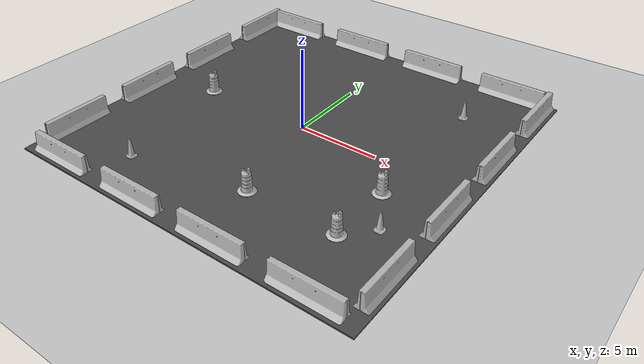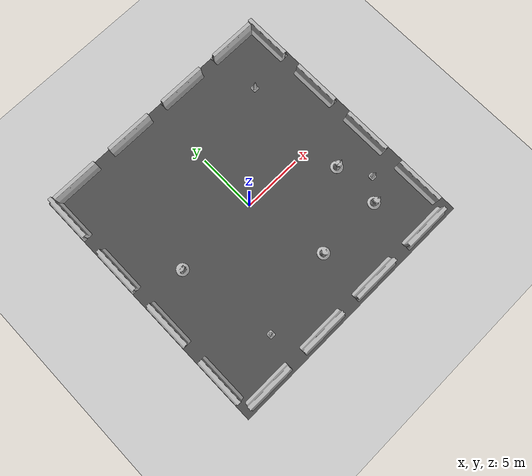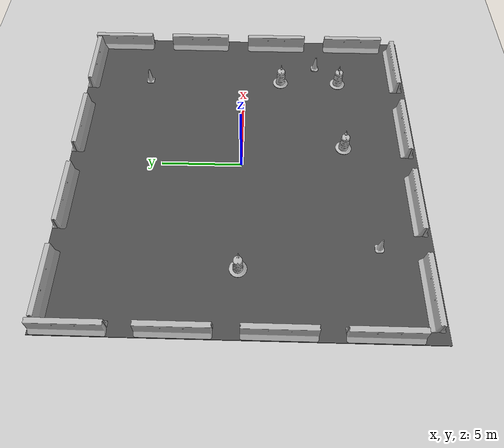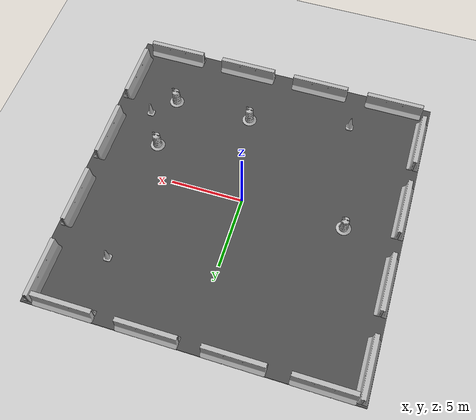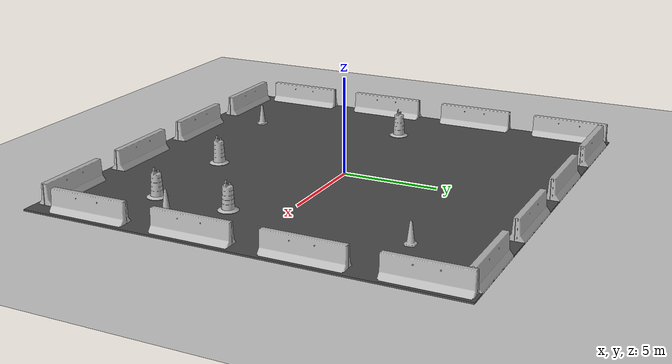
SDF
<sdf version="1.4">
 <world name="default">
  <light name="sun" type="directional">
   <pose>0 0 10 0 -0 0</pose>
   <diffuse>0.8 0.8 0.8 1</diffuse>
   <specular>0.2 0.2 0.2 1</specular>
   <attenuation>
    <range>1000</range>
    <constant>0.9</constant>
    <linear>0.01</linear>
    <quadratic>0.001</quadratic>
   </attenuation>
   <direction>-0.5 0.1 -0.9</direction>
  </light>
  <model name="ground_plane">
   <static>1</static>
   <link name="link">
    <collision name="collision">
     <geometry><plane><normal>0 0 1</normal><size>100 100</size></plane></geometry>
     <surface><friction><ode><mu>100</mu><mu2>50</mu2></ode></friction></surface>
    </collision>
    <visual name="visual">
     <cast_shadows>0</cast_shadows>
     <geometry><plane><normal>0 0 1</normal><size>100 100</size></plane></geometry>
     <material>
      <script><uri>file://media/materials/scripts/gazebo.material</uri><name>Gazebo/Grey</name></script>
     </material>
    </visual>
    <velocity_decay><linear>0</linear><angular>0</angular></velocity_decay>
    <kinematic>1</kinematic>
   </link>
  </model>
  <physics type="ode">
   <max_step_size>0.01</max_step_size>
   <real_time_factor>1</real_time_factor>
   <real_time_update_rate>100</real_time_update_rate>
   <gravity>0 0 -9.8</gravity>
  </physics>
  <scene><ambient>0.4 0.4 0.4 1</ambient><background>0.7 0.7 0.7 1</background><shadows>1</shadows></scene>
  <model name="jersey_barrier">
   <static>1</static>
   <link name="link">
    <visual name="visual">
     <geometry><mesh><uri>model://jersey_barrier/meshes/jersey_barrier.dae</uri></mesh></geometry>
    </visual>
    <collision name="upright">
     <pose>0 0 0.5715 0 -0 0</pose>
     <geometry><box><size>4.06542 0.3063 1.143</size></box></geometry>
    </collision>
    <collision name="base">
     <pose>0 0 0.032258 0 -0 0</pose>
     <geometry><box><size>4.06542 0.8107 0.064516</size></box></geometry>
    </collision>
    <collision name="base2">
     <pose>0 0 0.1 0 -0 0</pose>
     <geometry><box><size>4.06542 0.65 0.1</size></box></geometry>
    </collision>
    <collision name="base3">
     <pose>0 0 0.2 0 -0 0</pose>
     <geometry><box><size>4.06542 0.5 0.1</size></box></geometry>
    </collision>
    <collision name="left-angle">
     <pose>0 -0.224 0.2401 0.9 -0 0</pose>
     <geometry><box><size>4.06542 0.5 0.064516</size></box></geometry>
    </collision>
    <collision name="right-angle">
     <pose>0 0.224 0.2401 -0.9 0 0</pose>
     <geometry><box><size>4.06542 0.5 0.064516</size></box></geometry>
    </collision>
    <velocity_decay><linear>0</linear><angular>0</angular></velocity_decay>
   </link>
   <pose>-8.25 -10.5 0 0 -0 0</pose>
  </model>
  <model name="jersey_barrier_0">
   <static>1</static>
   <link name="link">
    <visual name="visual">
     <geometry><mesh><uri>model://jersey_barrier/meshes/jersey_barrier.dae</uri></mesh></geometry>
    </visual>
    <collision name="upright">
     <pose>0 0 0.5715 0 -0 0</pose>
     <geometry><box><size>4.06542 0.3063 1.143</size></box></geometry>
    </collision>
    <collision name="base">
     <pose>0 0 0.032258 0 -0 0</pose>
     <geometry><box><size>4.06542 0.8107 0.064516</size></box></geometry>
    </collision>
    <collision name="base2">
     <pose>0 0 0.1 0 -0 0</pose>
     <geometry><box><size>4.06542 0.65 0.1</size></box></geometry>
    </collision>
    <collision name="base3">
     <pose>0 0 0.2 0 -0 0</pose>
     <geometry><box><size>4.06542 0.5 0.1</size></box></geometry>
    </collision>
    <collision name="left-angle">
     <pose>0 -0.224 0.2401 0.9 -0 0</pose>
     <geometry><box><size>4.06542 0.5 0.064516</size></box></geometry>
    </collision>
    <collision name="right-angle">
     <pose>0 0.224 0.2401 -0.9 0 0</pose>
     <geometry><box><size>4.06542 0.5 0.064516</size></box></geometry>
    </collision>
    <velocity_decay><linear>0</linear><angular>0</angular></velocity_decay>
   </link>
   <pose>-2.75 -10.5 0 0 -0 0</pose>
  </model>
  <model name="jersey_barrier_1">
   <static>1</static>
   <link name="link">
    <visual name="visual">
     <geometry><mesh><uri>model://jersey_barrier/meshes/jersey_barrier.dae</uri></mesh></geometry>
    </visual>
    <collision name="upright">
     <pose>0 0 0.5715 0 -0 0</pose>
     <geometry><box><size>4.06542 0.3063 1.143</size></box></geometry>
    </collision>
    <collision name="base">
     <pose>0 0 0.032258 0 -0 0</pose>
     <geometry><box><size>4.06542 0.8107 0.064516</size></box></geometry>
    </collision>
    <collision name="base2">
     <pose>0 0 0.1 0 -0 0</pose>
     <geometry><box><size>4.06542 0.65 0.1</size></box></geometry>
    </collision>
    <collision name="base3">
     <pose>0 0 0.2 0 -0 0</pose>
     <geometry><box><size>4.06542 0.5 0.1</size></box></geometry>
    </collision>
    <collision name="left-angle">
     <pose>0 -0.224 0.2401 0.9 -0 0</pose>
     <geometry><box><size>4.06542 0.5 0.064516</size></box></geometry>
    </collision>
    <collision name="right-angle">
     <pose>0 0.224 0.2401 -0.9 0 0</pose>
     <geometry><box><size>4.06542 0.5 0.064516</size></box></geometry>
    </collision>
    <velocity_decay><linear>0</linear><angular>0</angular></velocity_decay>
   </link>
   <pose>2.75 -10.5 0 0 -0 0</pose>
  </model>
  <model name="jersey_barrier_2">
   <static>1</static>
   <link name="link">
    <visual name="visual">
     <geometry><mesh><uri>model://jersey_barrier/meshes/jersey_barrier.dae</uri></mesh></geometry>
    </visual>
    <collision name="upright">
     <pose>0 0 0.5715 0 -0 0</pose>
     <geometry><box><size>4.06542 0.3063 1.143</size></box></geometry>
    </collision>
    <collision name="base">
     <pose>0 0 0.032258 0 -0 0</pose>
     <geometry><box><size>4.06542 0.8107 0.064516</size></box></geometry>
    </collision>
    <collision name="base2">
     <pose>0 0 0.1 0 -0 0</pose>
     <geometry><box><size>4.06542 0.65 0.1</size></box></geometry>
    </collision>
    <collision name="base3">
     <pose>0 0 0.2 0 -0 0</pose>
     <geometry><box><size>4.06542 0.5 0.1</size></box></geometry>
    </collision>
    <collision name="left-angle">
     <pose>0 -0.224 0.2401 0.9 -0 0</pose>
     <geometry><box><size>4.06542 0.5 0.064516</size></box></geometry>
    </collision>
    <collision name="right-angle">
     <pose>0 0.224 0.2401 -0.9 0 0</pose>
     <geometry><box><size>4.06542 0.5 0.064516</size></box></geometry>
    </collision>
    <velocity_decay><linear>0</linear><angular>0</angular></velocity_decay>
   </link>
   <pose>-10.5 -7.75 0 0 -0 1.5708</pose>
  </model>
  <model name="jersey_barrier_3">
   <static>1</static>
   <link name="link">
    <visual name="visual">
     <geometry><mesh><uri>model://jersey_barrier/meshes/jersey_barrier.dae</uri></mesh></geometry>
    </visual>
    <collision name="upright">
     <pose>0 0 0.5715 0 -0 0</pose>
     <geometry><box><size>4.06542 0.3063 1.143</size></box></geometry>
    </collision>
    <collision name="base">
     <pose>0 0 0.032258 0 -0 0</pose>
     <geometry><box><size>4.06542 0.8107 0.064516</size></box></geometry>
    </collision>
    <collision name="base2">
     <pose>0 0 0.1 0 -0 0</pose>
     <geometry><box><size>4.06542 0.65 0.1</size></box></geometry>
    </collision>
    <collision name="base3">
     <pose>0 0 0.2 0 -0 0</pose>
     <geometry><box><size>4.06542 0.5 0.1</size></box></geometry>
    </collision>
    <collision name="left-angle">
     <pose>0 -0.224 0.2401 0.9 -0 0</pose>
     <geometry><box><size>4.06542 0.5 0.064516</size></box></geometry>
    </collision>
    <collision name="right-angle">
     <pose>0 0.224 0.2401 -0.9 0 0</pose>
     <geometry><box><size>4.06542 0.5 0.064516</size></box></geometry>
    </collision>
    <velocity_decay><linear>0</linear><angular>0</angular></velocity_decay>
   </link>
   <pose>-10.5 -2.25 0 0 -0 1.5708</pose>
  </model>
  <model name="jersey_barrier_4">
   <static>1</static>
   <link name="link">
    <visual name="visual">
     <geometry><mesh><uri>model://jersey_barrier/meshes/jersey_barrier.dae</uri></mesh></geometry>
    </visual>
    <collision name="upright">
     <pose>0 0 0.5715 0 -0 0</pose>
     <geometry><box><size>4.06542 0.3063 1.143</size></box></geometry>
    </collision>
    <collision name="base">
     <pose>0 0 0.032258 0 -0 0</pose>
     <geometry><box><size>4.06542 0.8107 0.064516</size></box></geometry>
    </collision>
    <collision name="base2">
     <pose>0 0 0.1 0 -0 0</pose>
     <geometry><box><size>4.06542 0.65 0.1</size></box></geometry>
    </collision>
    <collision name="base3">
     <pose>0 0 0.2 0 -0 0</pose>
     <geometry><box><size>4.06542 0.5 0.1</size></box></geometry>
    </collision>
    <collision name="left-angle">
     <pose>0 -0.224 0.2401 0.9 -0 0</pose>
     <geometry><box><size>4.06542 0.5 0.064516</size></box></geometry>
    </collision>
    <collision name="right-angle">
     <pose>0 0.224 0.2401 -0.9 0 0</pose>
     <geometry><box><size>4.06542 0.5 0.064516</size></box></geometry>
    </collision>
    <velocity_decay><linear>0</linear><angular>0</angular></velocity_decay>
   </link>
   <pose>-10.5 3.25 0 0 -0 1.5708</pose>
  </model>
  <model name="jersey_barrier_5">
   <static>1</static>
   <link name="link">
    <visual name="visual">
     <geometry><mesh><uri>model://jersey_barrier/meshes/jersey_barrier.dae</uri></mesh></geometry>
    </visual>
    <collision name="upright">
     <pose>0 0 0.5715 0 -0 0</pose>
     <geometry><box><size>4.06542 0.3063 1.143</size></box></geometry>
    </collision>
    <collision name="base">
     <pose>0 0 0.032258 0 -0 0</pose>
     <geometry><box><size>4.06542 0.8107 0.064516</size></box></geometry>
    </collision>
    <collision name="base2">
     <pose>0 0 0.1 0 -0 0</pose>
     <geometry><box><size>4.06542 0.65 0.1</size></box></geometry>
    </collision>
    <collision name="base3">
     <pose>0 0 0.2 0 -0 0</pose>
     <geometry><box><size>4.06542 0.5 0.1</size></box></geometry>
    </collision>
    <collision name="left-angle">
     <pose>0 -0.224 0.2401 0.9 -0 0</pose>
     <geometry><box><size>4.06542 0.5 0.064516</size></box></geometry>
    </collision>
    <collision name="right-angle">
     <pose>0 0.224 0.2401 -0.9 0 0</pose>
     <geometry><box><size>4.06542 0.5 0.064516</size></box></geometry>
    </collision>
    <velocity_decay><linear>0</linear><angular>0</angular></velocity_decay>
   </link>
   <pose>-10.5 8.75 0 0 -0 1.5708</pose>
  </model>
  <model name="jersey_barrier_6">
   <static>1</static>
   <link name="link">
    <visual name="visual">
     <geometry><mesh><uri>model://jersey_barrier/meshes/jersey_barrier.dae</uri></mesh></geometry>
    </visual>
    <collision name="upright">
     <pose>0 0 0.5715 0 -0 0</pose>
     <geometry><box><size>4.06542 0.3063 1.143</size></box></geometry>
    </collision>
    <collision name="base">
     <pose>0 0 0.032258 0 -0 0</pose>
     <geometry><box><size>4.06542 0.8107 0.064516</size></box></geometry>
    </collision>
    <collision name="base2">
     <pose>0 0 0.1 0 -0 0</pose>
     <geometry><box><size>4.06542 0.65 0.1</size></box></geometry>
    </collision>
    <collision name="base3">
     <pose>0 0 0.2 0 -0 0</pose>
     <geometry><box><size>4.06542 0.5 0.1</size></box></geometry>
    </collision>
    <collision name="left-angle">
     <pose>0 -0.224 0.2401 0.9 -0 0</pose>
     <geometry><box><size>4.06542 0.5 0.064516</size></box></geometry>
    </collision>
    <collision name="right-angle">
     <pose>0 0.224 0.2401 -0.9 0 0</pose>
     <geometry><box><size>4.06542 0.5 0.064516</size></box></geometry>
    </collision>
    <velocity_decay><linear>0</linear><angular>0</angular></velocity_decay>
   </link>
   <pose>10.5 -7.75 0 0 -0 1.5708</pose>
  </model>
  <model name="jersey_barrier_7">
   <static>1</static>
   <link name="link">
    <visual name="visual">
     <geometry><mesh><uri>model://jersey_barrier/meshes/jersey_barrier.dae</uri></mesh></geometry>
    </visual>
    <collision name="upright">
     <pose>0 0 0.5715 0 -0 0</pose>
     <geometry><box><size>4.06542 0.3063 1.143</size></box></geometry>
    </collision>
    <collision name="base">
     <pose>0 0 0.032258 0 -0 0</pose>
     <geometry><box><size>4.06542 0.8107 0.064516</size></box></geometry>
    </collision>
    <collision name="base2">
     <pose>0 0 0.1 0 -0 0</pose>
     <geometry><box><size>4.06542 0.65 0.1</size></box></geometry>
    </collision>
    <collision name="base3">
     <pose>0 0 0.2 0 -0 0</pose>
     <geometry><box><size>4.06542 0.5 0.1</size></box></geometry>
    </collision>
    <collision name="left-angle">
     <pose>0 -0.224 0.2401 0.9 -0 0</pose>
     <geometry><box><size>4.06542 0.5 0.064516</size></box></geometry>
    </collision>
    <collision name="right-angle">
     <pose>0 0.224 0.2401 -0.9 0 0</pose>
     <geometry><box><size>4.06542 0.5 0.064516</size></box></geometry>
    </collision>
    <velocity_decay><linear>0</linear><angular>0</angular></velocity_decay>
   </link>
   <pose>10.5 -2.25 0 0 -0 1.5708</pose>
  </model>
  <model name="jersey_barrier_8">
   <static>1</static>
   <link name="link">
    <visual name="visual">
     <geometry><mesh><uri>model://jersey_barrier/meshes/jersey_barrier.dae</uri></mesh></geometry>
    </visual>
    <collision name="upright">
     <pose>0 0 0.5715 0 -0 0</pose>
     <geometry><box><size>4.06542 0.3063 1.143</size></box></geometry>
    </collision>
    <collision name="base">
     <pose>0 0 0.032258 0 -0 0</pose>
     <geometry><box><size>4.06542 0.8107 0.064516</size></box></geometry>
    </collision>
    <collision name="base2">
     <pose>0 0 0.1 0 -0 0</pose>
     <geometry><box><size>4.06542 0.65 0.1</size></box></geometry>
    </collision>
    <collision name="base3">
     <pose>0 0 0.2 0 -0 0</pose>
     <geometry><box><size>4.06542 0.5 0.1</size></box></geometry>
    </collision>
    <collision name="left-angle">
     <pose>0 -0.224 0.2401 0.9 -0 0</pose>
     <geometry><box><size>4.06542 0.5 0.064516</size></box></geometry>
    </collision>
    <collision name="right-angle">
     <pose>0 0.224 0.2401 -0.9 0 0</pose>
     <geometry><box><size>4.06542 0.5 0.064516</size></box></geometry>
    </collision>
    <velocity_decay><linear>0</linear><angular>0</angular></velocity_decay>
   </link>
   <pose>10.5 3.25 0 0 -0 1.5708</pose>
  </model>
  <model name="jersey_barrier_9">
   <static>1</static>
   <link name="link">
    <visual name="visual">
     <geometry><mesh><uri>model://jersey_barrier/meshes/jersey_barrier.dae</uri></mesh></geometry>
    </visual>
    <collision name="upright">
     <pose>0 0 0.5715 0 -0 0</pose>
     <geometry><box><size>4.06542 0.3063 1.143</size></box></geometry>
    </collision>
    <collision name="base">
     <pose>0 0 0.032258 0 -0 0</pose>
     <geometry><box><size>4.06542 0.8107 0.064516</size></box></geometry>
    </collision>
    <collision name="base2">
     <pose>0 0 0.1 0 -0 0</pose>
     <geometry><box><size>4.06542 0.65 0.1</size></box></geometry>
    </collision>
    <collision name="base3">
     <pose>0 0 0.2 0 -0 0</pose>
     <geometry><box><size>4.06542 0.5 0.1</size></box></geometry>
    </collision>
    <collision name="left-angle">
     <pose>0 -0.224 0.2401 0.9 -0 0</pose>
     <geometry><box><size>4.06542 0.5 0.064516</size></box></geometry>
    </collision>
    <collision name="right-angle">
     <pose>0 0.224 0.2401 -0.9 0 0</pose>
     <geometry><box><size>4.06542 0.5 0.064516</size></box></geometry>
    </collision>
    <velocity_decay><linear>0</linear><angular>0</angular></velocity_decay>
   </link>
   <pose>10.5 8.75 0 0 -0 1.5708</pose>
  </model>
  <model name="jersey_barrier_10">
   <static>1</static>
   <link name="link">
    <visual name="visual">
     <geometry><mesh><uri>model://jersey_barrier/meshes/jersey_barrier.dae</uri></mesh></geometry>
    </visual>
    <collision name="upright">
     <pose>0 0 0.5715 0 -0 0</pose>
     <geometry><box><size>4.06542 0.3063 1.143</size></box></geometry>
    </collision>
    <collision name="base">
     <pose>0 0 0.032258 0 -0 0</pose>
     <geometry><box><size>4.06542 0.8107 0.064516</size></box></geometry>
    </collision>
    <collision name="base2">
     <pose>0 0 0.1 0 -0 0</pose>
     <geometry><box><size>4.06542 0.65 0.1</size></box></geometry>
    </collision>
    <collision name="base3">
     <pose>0 0 0.2 0 -0 0</pose>
     <geometry><box><size>4.06542 0.5 0.1</size></box></geometry>
    </collision>
    <collision name="left-angle">
     <pose>0 -0.224 0.2401 0.9 -0 0</pose>
     <geometry><box><size>4.06542 0.5 0.064516</size></box></geometry>
    </collision>
    <collision name="right-angle">
     <pose>0 0.224 0.2401 -0.9 0 0</pose>
     <geometry><box><size>4.06542 0.5 0.064516</size></box></geometry>
    </collision>
    <velocity_decay><linear>0</linear><angular>0</angular></velocity_decay>
   </link>
   <pose>8.25 -10.5 0 0 -0 0</pose>
  </model>
  <model name="jersey_barrier_11">
   <static>1</static>
   <link name="link">
    <visual name="visual">
     <geometry><mesh><uri>model://jersey_barrier/meshes/jersey_barrier.dae</uri></mesh></geometry>
    </visual>
    <collision name="upright">
     <pose>0 0 0.5715 0 -0 0</pose>
     <geometry><box><size>4.06542 0.3063 1.143</size></box></geometry>
    </collision>
    <collision name="base">
     <pose>0 0 0.032258 0 -0 0</pose>
     <geometry><box><size>4.06542 0.8107 0.064516</size></box></geometry>
    </collision>
    <collision name="base2">
     <pose>0 0 0.1 0 -0 0</pose>
     <geometry><box><size>4.06542 0.65 0.1</size></box></geometry>
    </collision>
    <collision name="base3">
     <pose>0 0 0.2 0 -0 0</pose>
     <geometry><box><size>4.06542 0.5 0.1</size></box></geometry>
    </collision>
    <collision name="left-angle">
     <pose>0 -0.224 0.2401 0.9 -0 0</pose>
     <geometry><box><size>4.06542 0.5 0.064516</size></box></geometry>
    </collision>
    <collision name="right-angle">
     <pose>0 0.224 0.2401 -0.9 0 0</pose>
     <geometry><box><size>4.06542 0.5 0.064516</size></box></geometry>
    </collision>
    <velocity_decay><linear>0</linear><angular>0</angular></velocity_decay>
   </link>
   <pose>-8.25 10.5 0 0 -0 0</pose>
  </model>
  <model name="jersey_barrier_12">
   <static>1</static>
   <link name="link">
    <visual name="visual">
     <geometry><mesh><uri>model://jersey_barrier/meshes/jersey_barrier.dae</uri></mesh></geometry>
    </visual>
    <collision name="upright">
     <pose>0 0 0.5715 0 -0 0</pose>
     <geometry><box><size>4.06542 0.3063 1.143</size></box></geometry>
    </collision>
    <collision name="base">
     <pose>0 0 0.032258 0 -0 0</pose>
     <geometry><box><size>4.06542 0.8107 0.064516</size></box></geometry>
    </collision>
    <collision name="base2">
     <pose>0 0 0.1 0 -0 0</pose>
     <geometry><box><size>4.06542 0.65 0.1</size></box></geometry>
    </collision>
    <collision name="base3">
     <pose>0 0 0.2 0 -0 0</pose>
     <geometry><box><size>4.06542 0.5 0.1</size></box></geometry>
    </collision>
    <collision name="left-angle">
     <pose>0 -0.224 0.2401 0.9 -0 0</pose>
     <geometry><box><size>4.06542 0.5 0.064516</size></box></geometry>
    </collision>
    <collision name="right-angle">
     <pose>0 0.224 0.2401 -0.9 0 0</pose>
     <geometry><box><size>4.06542 0.5 0.064516</size></box></geometry>
    </collision>
    <velocity_decay><linear>0</linear><angular>0</angular></velocity_decay>
   </link>
   <pose>-2.75 10.5 0 0 -0 0</pose>
  </model>
  <model name="jersey_barrier_13">
   <static>1</static>
   <link name="link">
    <visual name="visual">
     <geometry><mesh><uri>model://jersey_barrier/meshes/jersey_barrier.dae</uri></mesh></geometry>
    </visual>
    <collision name="upright">
     <pose>0 0 0.5715 0 -0 0</pose>
     <geometry><box><size>4.06542 0.3063 1.143</size></box></geometry>
    </collision>
    <collision name="base">
     <pose>0 0 0.032258 0 -0 0</pose>
     <geometry><box><size>4.06542 0.8107 0.064516</size></box></geometry>
    </collision>
    <collision name="base2">
     <pose>0 0 0.1 0 -0 0</pose>
     <geometry><box><size>4.06542 0.65 0.1</size></box></geometry>
    </collision>
    <collision name="base3">
     <pose>0 0 0.2 0 -0 0</pose>
     <geometry><box><size>4.06542 0.5 0.1</size></box></geometry>
    </collision>
    <collision name="left-angle">
     <pose>0 -0.224 0.2401 0.9 -0 0</pose>
     <geometry><box><size>4.06542 0.5 0.064516</size></box></geometry>
    </collision>
    <collision name="right-angle">
     <pose>0 0.224 0.2401 -0.9 0 0</pose>
     <geometry><box><size>4.06542 0.5 0.064516</size></box></geometry>
    </collision>
    <velocity_decay><linear>0</linear><angular>0</angular></velocity_decay>
   </link>
   <pose>2.75 10.5 0 0 -0 0</pose>
  </model>
  <model name="jersey_barrier_14">
   <static>1</static>
   <link name="link">
    <visual name="visual">
     <geometry><mesh><uri>model://jersey_barrier/meshes/jersey_barrier.dae</uri></mesh></geometry>
    </visual>
    <collision name="upright">
     <pose>0 0 0.5715 0 -0 0</pose>
     <geometry><box><size>4.06542 0.3063 1.143</size></box></geometry>
    </collision>
    <collision name="base">
     <pose>0 0 0.032258 0 -0 0</pose>
     <geometry><box><size>4.06542 0.8107 0.064516</size></box></geometry>
    </collision>
    <collision name="base2">
     <pose>0 0 0.1 0 -0 0</pose>
     <geometry><box><size>4.06542 0.65 0.1</size></box></geometry>
    </collision>
    <collision name="base3">
     <pose>0 0 0.2 0 -0 0</pose>
     <geometry><box><size>4.06542 0.5 0.1</size></box></geometry>
    </collision>
    <collision name="left-angle">
     <pose>0 -0.224 0.2401 0.9 -0 0</pose>
     <geometry><box><size>4.06542 0.5 0.064516</size></box></geometry>
    </collision>
    <collision name="right-angle">
     <pose>0 0.224 0.2401 -0.9 0 0</pose>
     <geometry><box><size>4.06542 0.5 0.064516</size></box></geometry>
    </collision>
    <velocity_decay><linear>0</linear><angular>0</angular></velocity_decay>
   </link>
   <pose>8.25 10.5 0 0 -0 0</pose>
  </model>
  <model name="Construction Cone">
   <link name="link">
    <collision name="collision">
     <geometry>
      <mesh><scale>10 10 10</scale><uri>model://construction_cone/meshes/construction_cone.dae</uri></mesh>
     </geometry>
    </collision>
    <visual name="visual">
     <geometry>
      <mesh><scale>10 10 10</scale><uri>model://construction_cone/meshes/construction_cone.dae</uri></mesh>
     </geometry>
    </visual>
    <velocity_decay><linear>0</linear><angular>0</angular></velocity_decay>
    <inertial>
     <inertia><ixx>1</ixx><ixy>0</ixy><ixz>0</ixz><iyy>1</iyy><iyz>0</iyz><izz>1</izz></inertia>
     <mass>1</mass>
    </inertial>
    <kinematic>1</kinematic>
   </link>
   <pose>-5.59121 -8 0.05 0 -1e-06 0</pose>
   <static>0</static>
  </model>
  <model name="Construction Barrel">
   <link name="link">
    <inertial>
     <pose>0 0 0.4 0 -0 0</pose>
     <mass>500</mass>
     <inertia><ixx>51.2096</ixx><iyy>51.2096</iyy><izz>25</izz><ixy>0</ixy><ixz>0</ixz><iyz>0</iyz></inertia>
    </inertial>
    <collision name="collision">
     <geometry><mesh><uri>model://construction_barrel/meshes/construction_barrel.dae</uri></mesh></geometry>
    </collision>
    <visual name="visual">
     <geometry><mesh><uri>model://construction_barrel/meshes/construction_barrel.dae</uri></mesh></geometry>
    </visual>
    <velocity_decay><linear>0</linear><angular>0</angular></velocity_decay>
    <kinematic>1</kinematic>
   </link>
   <pose>7.00006 -2.54635 0.049999 4e-06 -0 0.000401</pose>
   <static>0</static>
  </model>
  <model name="Construction Barrel_1">
   <link name="link">
    <inertial>
     <pose>0 0 0.4 0 -0 0</pose>
     <mass>500</mass>
     <inertia><ixx>51.2096</ixx><iyy>51.2096</iyy><izz>25</izz><ixy>0</ixy><ixz>0</ixz><iyz>0</iyz></inertia>
    </inertial>
    <collision name="collision">
     <geometry><mesh><uri>model://construction_barrel/meshes/construction_barrel.dae</uri></mesh></geometry>
    </collision>
    <visual name="visual">
     <geometry><mesh><uri>model://construction_barrel/meshes/construction_barrel.dae</uri></mesh></geometry>
    </visual>
    <velocity_decay><linear>0</linear><angular>0</angular></velocity_decay>
    <kinematic>1</kinematic>
   </link>
   <pose>7 -6.51128 0.049999 -1e-06 -3e-06 3.8e-05</pose>
   <static>0</static>
  </model>
  <model name="Construction Cone_0">
   <link name="link">
    <collision name="collision">
     <geometry>
      <mesh><scale>10 10 10</scale><uri>model://construction_cone/meshes/construction_cone.dae</uri></mesh>
     </geometry>
    </collision>
    <visual name="visual">
     <geometry>
      <mesh><scale>10 10 10</scale><uri>model://construction_cone/meshes/construction_cone.dae</uri></mesh>
     </geometry>
    </visual>
    <velocity_decay><linear>0</linear><angular>0</angular></velocity_decay>
    <inertial>
     <inertia><ixx>1</ixx><ixy>0</ixy><ixz>0</ixz><iyy>1</iyy><iyz>0</iyz><izz>1</izz></inertia>
     <mass>1</mass>
    </inertial>
    <kinematic>1</kinematic>
   </link>
   <pose>6.99685 6.55732 0.05 -8.27181e-25 1e-06 -0.007012</pose>
   <static>0</static>
  </model>
  <model name="custom_box_1">
   <link name="link">
    <inertial>
     <pose>0 0 0.4 0 -0 0</pose>
     <mass>500</mass>
     <inertia><ixx>51.2096</ixx><iyy>51.2096</iyy><izz>25</izz><ixy>0</ixy><ixz>0</ixz><iyz>0</iyz></inertia>
    </inertial>
    <collision name="collision">
     <geometry><mesh><uri>model://construction_barrel/meshes/construction_barrel.dae</uri></mesh></geometry>
    </collision>
    <visual name="visual">
     <geometry><mesh><uri>model://construction_barrel/meshes/construction_barrel.dae</uri></mesh></geometry>
    </visual>
    <velocity_decay><linear>0</linear><angular>0</angular></velocity_decay>
    <kinematic>1</kinematic>
   </link>
   <pose>-7 0 0.049999 -1e-06 -3e-06 3.8e-05</pose>
   <static>0</static>
  </model>
  <model name="Construction Barrel_0">
   <link name="link">
    <inertial>
     <pose>0 0 0.4 0 -0 0</pose>
     <mass>500</mass>
     <inertia><ixx>51.2096</ixx><iyy>51.2096</iyy><izz>25</izz><ixy>0</ixy><ixz>0</ixz><iyz>0</iyz></inertia>
    </inertial>
    <collision name="collision">
     <geometry><mesh><uri>model://construction_barrel/meshes/construction_barrel.dae</uri></mesh></geometry>
    </collision>
    <visual name="visual">
     <geometry><mesh><uri>model://construction_barrel/meshes/construction_barrel.dae</uri></mesh></geometry>
    </visual>
    <velocity_decay><linear>0</linear><angular>0</angular></velocity_decay>
    <kinematic>1</kinematic>
   </link>
   <pose>1.45178 -6.51128 0.049999 -1e-06 -3e-06 3.8e-05</pose>
   <static>0</static>
  </model>
  <model name="asphalt_plane">
   <static>1</static>
   <link name="link">
    <collision name="collision"><geometry><box><size>22 22 0.1</size></box></geometry></collision>
    <visual name="visual">
     <cast_shadows>0</cast_shadows>
     <geometry><box><size>22 22 0.1</size></box></geometry>
     <material>
      <script>
       <uri>model://asphalt_plane/materials/scripts</uri>
       <uri>model://asphalt_plane/materials/textures</uri>
       <name>vrc/asphalt</name>
      </script>
     </material>
    </visual>
    <velocity_decay><linear>0</linear><angular>0</angular></velocity_decay>
    <kinematic>1</kinematic>
   </link>
   <pose>0.076733 -0.110379 0 0 -0 0</pose>
  </model>
  <model name="Construction Cone_1">
   <link name="link">
    <collision name="collision">
     <geometry>
      <mesh><scale>10 10 10</scale><uri>model://construction_cone/meshes/construction_cone.dae</uri></mesh>
     </geometry>
    </collision>
    <visual name="visual">
     <geometry>
      <mesh><scale>10 10 10</scale><uri>model://construction_cone/meshes/construction_cone.dae</uri></mesh>
     </geometry>
    </visual>
    <velocity_decay><linear>0</linear><angular>0</angular></velocity_decay>
    <inertial>
     <inertia><ixx>1</ixx><ixy>0</ixy><ixz>0</ixz><iyy>1</iyy><iyz>0</iyz><izz>1</izz></inertia>
     <mass>1</mass>
    </inertial>
    <kinematic>1</kinematic>
   </link>
   <pose>8.42887 -5 0.049999 0 3e-06 0</pose>
   <static>0</static>
  </model>
 </world>
</sdf>
